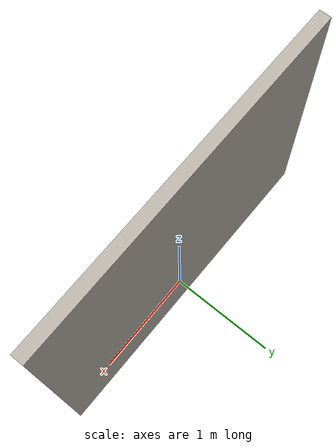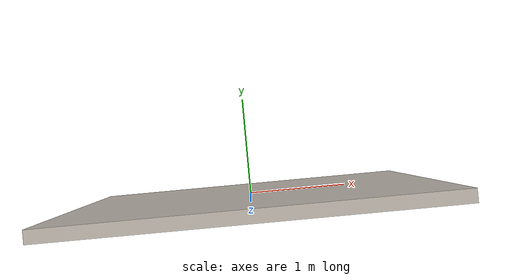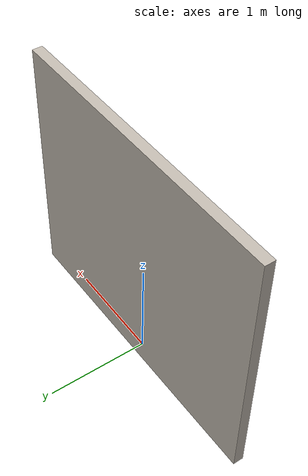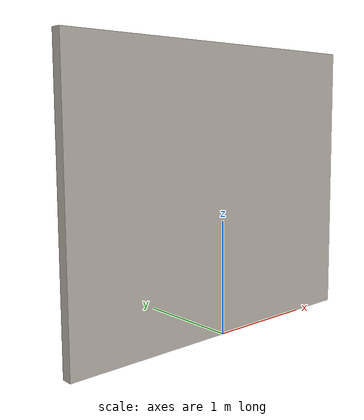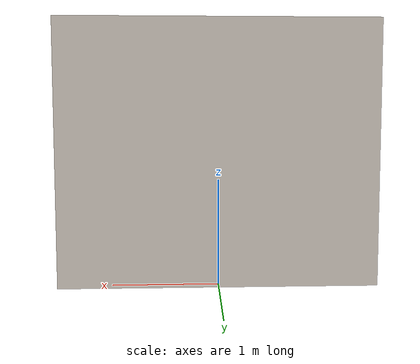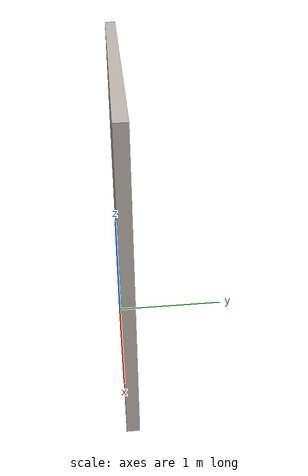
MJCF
<mujoco model="taiwanbear scene">
  <statistic center="0 0 0.2" extent="0.6"/>

  <asset>
    <texture name="wall" file="assets/wall_color.png" type="2d"/>
    <material name="wall" texture="wall" texuniform="true"/>
  </asset>

  <worldbody>
    <geom name="wall" size="1.5 1.25 0.05" type="box" material="wall" pos="0.0 0.05 1.25" quat="0.70710678 0.70710678 0.0 0.0" contype="1" conaffinity="1"/>
  </worldbody>
</mujoco>
